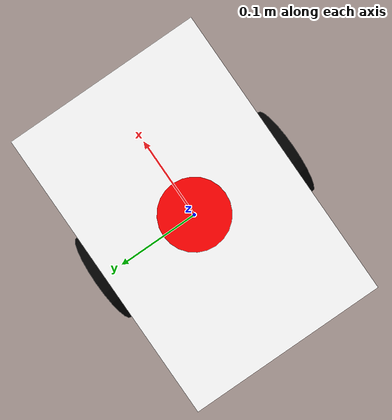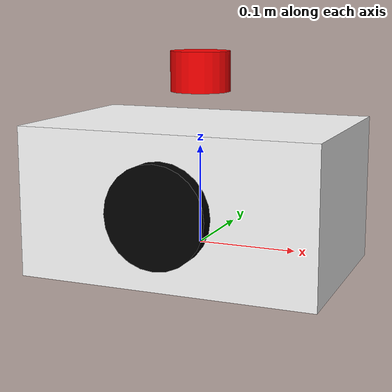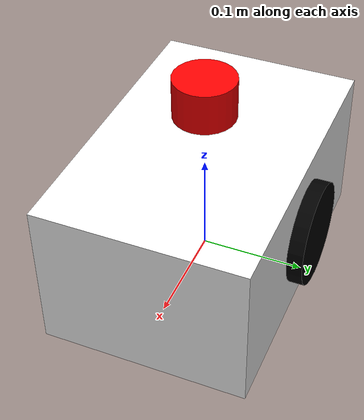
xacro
<?xml version="1.0"?>
<robot xmlns:xacro="http://www.ros.org/wiki/xacro" name="robot">

  <!-- Load properties -->
  <xacro:property name="base_width" value="0.2"/>
  <xacro:property name="wheel_radius" value="0.05"/>
  <xacro:property name="base_length" value="0.3"/>
  <xacro:property name="base_height" value="0.15"/>
  <xacro:property name="base_mass" value="2.0"/>
  <xacro:property name="wheel_mass" value="0.2"/>
  <xacro:property name="lidar_mass" value="0.1"/>

  <!-- Define some colors for visualization -->
  <material name="black">
    <color rgba="0 0 0 1"/>
  </material>
  <material name="red">
    <color rgba="1 0 0 1"/>
  </material>
  <material name="green">
    <color rgba="0 1 0 1"/>
  </material>
  <material name="white">
    <color rgba="1 1 1 1"/>
  </material>

  <!-- Base footprint - ground projection for navigation -->
  <link name="base_footprint"/>

  <!-- Base link - robot body -->
  <link name="base_link">
    <inertial>
      <mass value="${base_mass}"/>
      <inertia ixx="0.01" ixy="0" ixz="0" iyy="0.01" iyz="0" izz="0.02"/>
      <origin xyz="0 0 0" rpy="0 0 0"/>
    </inertial>
    <visual>
      <geometry>
        <box size="${base_length} ${base_width} ${base_height}"/>
      </geometry>
      <material name="white"/>
      <origin xyz="0 0 0" rpy="0 0 0"/>
    </visual>
    <collision>
      <geometry>
        <box size="${base_length} ${base_width} ${base_height}"/>
      </geometry>
      <origin xyz="0 0 0" rpy="0 0 0"/>
    </collision>
  </link>

  <!-- Joint between base_footprint and base_link -->
  <joint name="base_footprint_joint" type="fixed">
    <origin xyz="0 0 ${wheel_radius}" rpy="0 0 0"/>
    <parent link="base_footprint"/>
    <child link="base_link"/>
  </joint>

  <!-- Left wheel -->
  <link name="left_wheel">
    <inertial>
      <mass value="${wheel_mass}"/>
      <inertia ixx="0.001" ixy="0" ixz="0" iyy="0.001" iyz="0" izz="0.001"/>
    </inertial>
    <visual>
      <geometry>
        <cylinder length="0.03" radius="${wheel_radius}"/>
      </geometry>
      <material name="black"/>
      <origin xyz="0 0 0" rpy="1.5708 0 0"/>
    </visual>
    <collision>
      <geometry>
        <cylinder length="0.03" radius="${wheel_radius}"/>
      </geometry>
      <origin xyz="0 0 0" rpy="1.5708 0 0"/>
    </collision>
  </link>

  <!-- Right wheel -->
  <link name="right_wheel">
    <inertial>
      <mass value="${wheel_mass}"/>
      <inertia ixx="0.001" ixy="0" ixz="0" iyy="0.001" iyz="0" izz="0.001"/>
    </inertial>
    <visual>
      <geometry>
        <cylinder length="0.03" radius="${wheel_radius}"/>
      </geometry>
      <material name="black"/>
      <origin xyz="0 0 0" rpy="1.5708 0 0"/>
    </visual>
    <collision>
      <geometry>
        <cylinder length="0.03" radius="${wheel_radius}"/>
      </geometry>
      <origin xyz="0 0 0" rpy="1.5708 0 0"/>
    </collision>
  </link>

  <!-- Left wheel joint -->
  <joint name="left_wheel_joint" type="continuous">
    <axis xyz="0 1 0"/>
    <parent link="base_link"/>
    <child link="left_wheel"/>
    <origin xyz="0 ${base_width/2} 0" rpy="0 0 0"/>
  </joint>

  <!-- Right wheel joint -->
  <joint name="right_wheel_joint" type="continuous">
    <axis xyz="0 1 0"/>
    <parent link="base_link"/>
    <child link="right_wheel"/>
    <origin xyz="0 -${base_width/2} 0" rpy="0 0 0"/>
  </joint>

  <!-- Lidar link -->
  <link name="lidar_link">
    <inertial>
      <mass value="${lidar_mass}"/>
      <inertia ixx="0.0001" ixy="0" ixz="0" iyy="0.0001" iyz="0" izz="0.0001"/>
    </inertial>
    <visual>
      <geometry>
        <cylinder length="0.04" radius="0.03"/>
      </geometry>
      <material name="red"/>
      <origin xyz="0 0 0" rpy="0 0 0"/>
    </visual>
    <collision>
      <geometry>
        <cylinder length="0.04" radius="0.03"/>
      </geometry>
      <origin xyz="0 0 0" rpy="0 0 0"/>
    </collision>
  </link>

  <!-- Lidar joint - mounted on top of base_link -->
  <joint name="lidar_joint" type="fixed">
    <origin xyz="0 0 ${base_height/2 + 0.05}" rpy="0 0 0"/>
    <parent link="base_link"/>
    <child link="lidar_link"/>
  </joint>

</robot>
